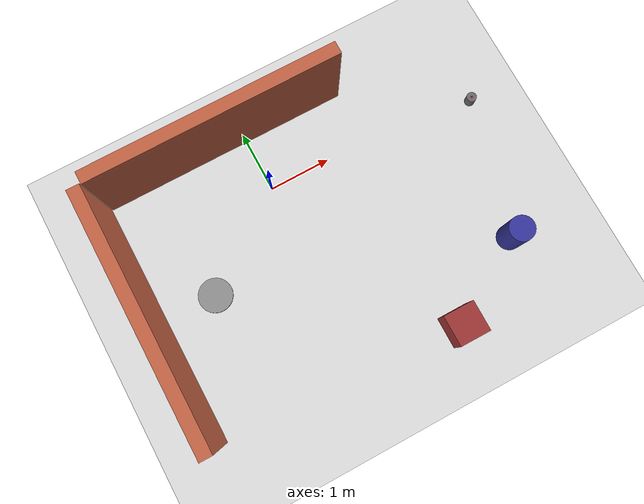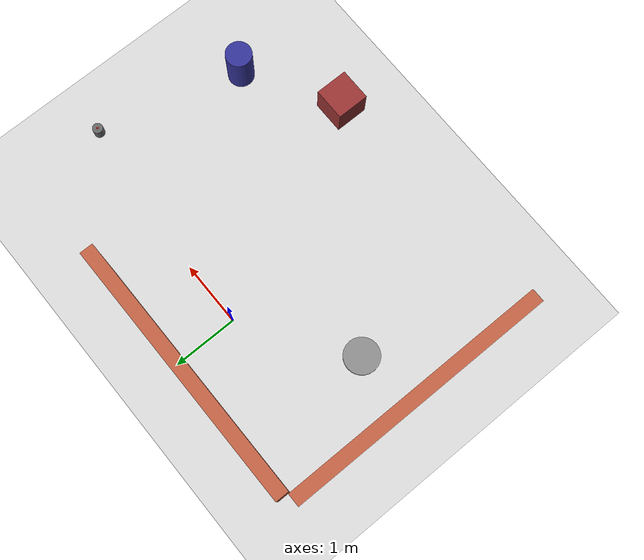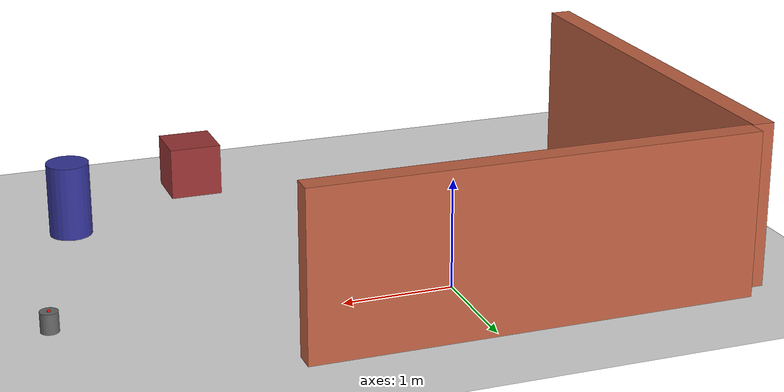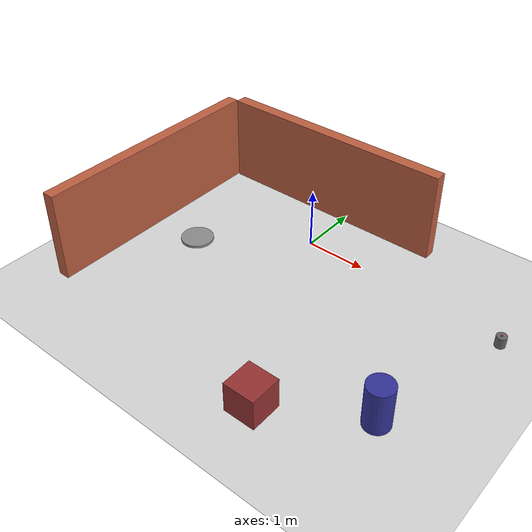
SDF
<sdf version="1.7">
 <world name="lab_world">
  <light name="sun" type="directional">
   <pose>0 0 10 0 0 0</pose>
   <diffuse>1 1 1 1</diffuse>
   <specular>0.2 0.2 0.2 1</specular>
   <attenuation>
    <range>100</range>
    <constant>0.9</constant>
    <linear>0.01</linear>
    <quadratic>0.001</quadratic>
   </attenuation>
   <direction>-0.5 0.5 -1</direction>
  </light>
  <model name="ground">
   <static>1</static>
   <link name="ground_link">
    <collision name="ground_collision">
     <geometry><plane><normal>0 0 1</normal><size>50 50</size></plane></geometry>
    </collision>
    <visual name="ground_visual">
     <geometry><plane><normal>0 0 1</normal><size>50 50</size></plane></geometry>
     <material><ambient>0.85 0.85 0.85 1</ambient><diffuse>0.85 0.85 0.85 1</diffuse></material>
    </visual>
   </link>
  </model>
  <model name="brick_wall_left">
   <static>1</static>
   <pose>-2.46405 -1.10882 0.75 0 0 0</pose>
   <link name="wall_link">
    <collision name="collision"><geometry><box><size>0.2 4 1.5</size></box></geometry></collision>
    <visual name="visual">
     <geometry><box><size>0.2 4 1.5</size></box></geometry>
     <material><ambient>0.65 0.32 0.22 1</ambient><diffuse>0.75 0.38 0.26 1</diffuse></material>
    </visual>
   </link>
  </model>
  <model name="brick_wall_right">
   <static>1</static>
   <pose>-0.347347 0.968595 0.75 0 0 1.5708</pose>
   <link name="wall_link">
    <collision name="collision"><geometry><box><size>0.2 4 1.5</size></box></geometry></collision>
    <visual name="visual">
     <geometry><box><size>0.2 4 1.5</size></box></geometry>
     <material><ambient>0.65 0.32 0.22 1</ambient><diffuse>0.75 0.38 0.26 1</diffuse></material>
    </visual>
   </link>
  </model>
  <model name="obstacle_box">
   <static>1</static>
   <pose>1.51611 -3.24702 0.25 0 0 0</pose>
   <link name="link">
    <collision name="collision"><geometry><box><size>0.5 0.5 0.5</size></box></geometry></collision>
    <visual name="visual">
     <geometry><box><size>0.5 0.5 0.5</size></box></geometry>
     <material><ambient>0.6 0.2 0.2 1</ambient><diffuse>0.6 0.2 0.2 1</diffuse></material>
    </visual>
   </link>
  </model>
  <model name="obstacle_cylinder">
   <static>1</static>
   <pose>2.87436 -2.43085 0.35 0 0 0</pose>
   <link name="link">
    <collision name="collision">
     <geometry><cylinder><radius>0.2</radius><length>0.7</length></cylinder></geometry>
    </collision>
    <visual name="visual">
     <geometry><cylinder><radius>0.2</radius><length>0.7</length></cylinder></geometry>
     <material><ambient>0.2 0.2 0.6 1</ambient><diffuse>0.2 0.2 0.6 1</diffuse></material>
    </visual>
   </link>
  </model>
  <model name="stone">
   <static>0</static>
   <pose>3.45662 -0.223026 0.125 0 0 0</pose>
   <link name="stone_link">
    <inertial>
     <mass>0.6</mass>
     <inertia><ixx>0.001</ixx><iyy>0.001</iyy><izz>0.001</izz><ixy>0</ixy><ixz>0</ixz><iyz>0</iyz></inertia>
    </inertial>
    <collision name="collision">
     <geometry><cylinder><radius>0.08</radius><length>0.13</length></cylinder></geometry>
     <surface><friction><ode><mu>2.0</mu><mu2>2.0</mu2></ode></friction></surface>
    </collision>
    <visual name="visual">
     <geometry><cylinder><radius>0.08</radius><length>0.18</length></cylinder></geometry>
     <material><ambient>0.4 0.4 0.4 1</ambient><diffuse>0.4 0.4 0.4 1</diffuse></material>
    </visual>
   </link>
   <link name="stone_grasp_link">
    <pose>0 0 0.09 0 0 0</pose>
    <inertial>
     <mass>0.0001</mass>
     <inertia>
      <ixx>0.000001</ixx>
      <iyy>0.000001</iyy>
      <izz>0.000001</izz>
      <ixy>0</ixy>
      <ixz>0</ixz>
      <iyz>0</iyz>
     </inertia>
    </inertial>
    <visual name="grasp_visual">
     <geometry><sphere><radius>0.015</radius></sphere></geometry>
     <material><ambient>1 0 0 1</ambient><diffuse>1 0 0 1</diffuse></material>
    </visual>
   </link>
   <joint name="stone_grasp_joint" type="fixed">
    <parent>stone_link</parent>
    <child>stone_grasp_link</child>
   </joint>
  </model>
  <model name="container">
   <static>1</static>
   <pose>-1.54015 -1.08473 0 0 0 0</pose>
   <link name="container_link">
    <collision name="base_collision">
     <geometry><cylinder><radius>0.25</radius><length>0.02</length></cylinder></geometry>
    </collision>
    <visual name="base_visual">
     <geometry><cylinder><radius>0.25</radius><length>0.02</length></cylinder></geometry>
     <material><ambient>0.1 0.1 0.8 1</ambient><diffuse>0.1 0.1 0.8 1</diffuse></material>
    </visual>
    <collision name="wall_collision">
     <geometry><cylinder><radius>0.27</radius><length>0.07</length></cylinder></geometry>
    </collision>
    <visual name="wall_visual">
     <geometry><cylinder><radius>0.27</radius><length>0.07</length></cylinder></geometry>
     <material><ambient>0.45 0.45 0.45 1</ambient><diffuse>0.55 0.55 0.55 1</diffuse></material>
    </visual>
   </link>
  </model>
  <plugin name="gazebo_ros_link_attacher" filename="libgazebo_ros_link_attacher_plugin.so"/>
 </world>
</sdf>
